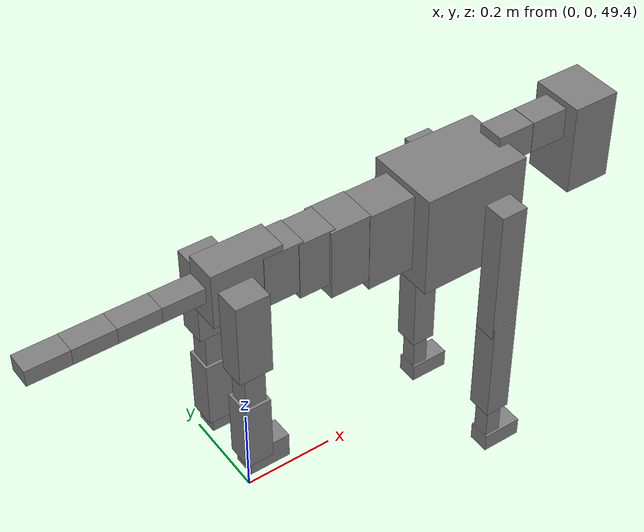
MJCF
<mujoco model="dog">

    <default>
        <joint armature="0.02" stiffness="1" damping="0.2" limited="true"/>
        <geom condim="3" friction="1 0.05 0.05" margin="0.01"/>
        <motor ctrllimited="true" ctrlrange="-1.0 1.0" forcelimited="true" gear="50"/>
    </default>

    <compiler inertiafromgeom="true" angle="radian"/>

    <option timestep="0.016" iterations="50" tolerance="1e-10" solver="Newton" jacobian="dense" cone="pyramidal"/>

    <size nconmax="20000" njmax="60000" nstack="5000000"/>
    <visual>
        <map force="0.1" zfar="30"/>
        <rgba haze="0.15 0.25 0.35 1"/>
        <quality shadowsize="2048"/>
        <global offwidth="800" offheight="800"/>
    </visual>

    <asset>
        <texture type="skybox" builtin="gradient" rgb1="0.3 0.5 0.7" rgb2="0 0 0" width="512" height="512"/>
        <texture name="texplane" type="2d" builtin="checker" rgb1=".2 .3 .4" rgb2=".1 0.15 0.2" width="512" height="512"
                 mark="cross" markrgb=".8 .8 .8"/>
        <texture name="texgeom" type="cube" builtin="flat" mark="cross" width="127" height="1278" rgb1="0.8 0.6 0.4"
                 rgb2="0.8 0.6 0.4" markrgb="1 1 1" random="0.01"/>

        <material name="matplane" reflectance="0.3" texture="texplane" texrepeat="1 1" texuniform="true"/>
        <material name="matgeom" texture="texgeom" texuniform="true" rgba="0.8 0.6 .4 1"/>
    </asset>

    <worldbody>
        <geom name="floor" pos="0 0 0" size="0 0 .25" type="plane" material="matplane" condim="3"/>

        <light directional="false" diffuse=".2 .2 .2" specular="0 0 0" pos="0 0 5" dir="0 0 -1" castshadow="false"/>
        <light mode="targetbodycom" target="torso" directional="false" diffuse=".8 .8 .8" specular="0.3 0.3 0.3"
               pos="0 0 4.0" dir="0 0 -1"/>

        <body name="root" pos="0 0 50">
            <freejoint name="root_1"/>
            <geom type="box" pos="0 0 -0.02" size="0.0774  0.0358  0.063" density="2030"/>

            <body name="spine1" pos="0.054 0 0">
                <joint name="spine1_y" axis="0 1 0" range="0 0.7" limited="true"/>
                <geom type="box" pos="0.02375 0 -0.03" size="0.04375  0.0375  0.05985" density="2030"/>

                <body name="spine2" pos="0.0612 0 0">
                    <joint name="spine2_y" axis="0 1 0" range="-0.15 0.15" limited="true"/>
                    <geom type="box" pos="0.03555  0  -0.04" size="0.04055  0.039  0.06615" density="2030"/>

                    <body name="spine3" pos="0.0730 0 0">
                        <joint name="spine3_y" axis="0 1 0" range="-0.15 0.15" limited="true"/>
                        <geom type="box" pos="0.03555  0  -0.057" size="0.04555  0.0445  0.081" density="2030"/>

                        <body name="spine4" pos="0.0780 0 0">
                            <joint name="spine4_y" axis="0 1 0" range="-0.15 0.15" limited="true"/>
                            <geom type="box" pos="0.05265  0  -0.07" size="0.05265  0.045  0.09135" density="2030"/>

                            <body name="torso" pos="0.1082 0 0">
                                <joint name="torso_y" axis="0 1 0" range="-0.15 0.15" limited="true"/>
                                <geom type="box" pos="0.11925  0  -0.085" size="0.11925  0.085  0.11745"
                                      density="2030"/>

                                <body name="neck1" pos="0.2160  0   0.0180">
                                    <joint name="neck1_y" axis="0 1 0" range="-1.2  -1" limited="true"/>
                                    <geom type="box" pos="0.0423  0  0" size="0.0423  0.03  0.036" density="2325"/>

                                    <body name="neck2" pos="0.0853  0  0">
                                        <joint name="neck2_y" axis="0 1 0" range="0.1  0" limited="true"/>
                                        <geom type="box" pos="0.0423  0  0" size="0.0423  0.03  0.036" density="2325"/>

                                        <body name="head" pos="0.0853  0  0">
                                            <joint name="head_y" axis="0 1 0" range="-0.3  -0.2" limited="true"/>
                                            <geom type="box" pos="0.0531  0  -0.055" size="0.0531  0.06  0.1044"
                                                  density="4030"/>

                                        </body>
                                    </body>
                                </body>

                                <body name="front_shoulder" pos="0.156  0   -0.0480">
                                    <joint name="front_shoulder_y" axis="0 1 0" range="-1 1.5" limited="true"/>
                                    <geom type="box" pos="0 0.13 -0.1342" size="0.0302  0.0258  0.1609" density="1158"/>
                                    <geom type="box" pos="0 -0.13 -0.1342" size="0.0302  0.0258  0.1609"
                                          density="1158"/>

                                    <body name="front_elbow" pos="0  0  -0.2684">
                                        <joint name="front_elbow_y" axis="0 1 0" range="-2 0" limited="true"/>
                                        <geom type="box" pos="0 0.13 -0.1262" size="0.0279  0.0286  0.1262"
                                              density="1081"/>
                                        <geom type="box" pos="0 -0.13 -0.1262" size="0.0279  0.0286  0.1262"
                                              density="1081"/>

                                        <body name="front_wrist" pos="0  0  -0.2525">
                                            <joint name="front_wrist_y" axis="0 1 0" range="-0.2 0" limited="true"/>
                                            <geom type="box" pos="0 0.13 -0.0460" size="0.0178  0.0197  0.0591"
                                                  density="1664"/>
                                            <geom type="box" pos="0 -0.13 -0.0460" size="0.0178  0.0197  0.0591"
                                                  density="1664"/>

                                            <body name="front_finger_end" pos="0  0  -0.0919">
                                                <joint name="front_finger_y" axis="0 1 0" range="-0.4 1"
                                                       limited="true"/>
                                                <geom type="box" pos="0.0246  0.13  -0.0064"
                                                      size="0.0451  0.0246  0.0214" density="1515"/>
                                                <geom type="box" pos="0.0246  -0.13  -0.0064"
                                                      size="0.0451  0.0246  0.0214" density="1515"/>

                                            </body>

                                        </body>
                                    </body>
                                </body>

                            </body>
                        </body>
                    </body>
                </body>
            </body>

            <body name="back_hip" pos="-0.03 0 -0.018">
                <joint name="back_hip_y" axis="0 1 0" range="-1.5 0.3" limited="true"/>
                <geom type="box" pos="0 0.07 -0.0721" size="0.0368  0.0289  0.0949" density="1154"/>
                <geom type="box" pos="0 -0.07 -0.0721" size="0.0368  0.0289  0.0949" density="1154"/>

                <body name="back_knee" pos="0  0  -0.1442">
                    <joint name="back_knee_y" axis="0 1 0" range="0 2.8" limited="true"/>
                    <geom type="box" pos="0 0.07 -0.0558" size="0.0230  0.0227  0.0714" density="1227"/>
                    <geom type="box" pos="0 -0.07 -0.0558" size="0.0230  0.0227  0.0714" density="1227"/>

                    <body name="back_ankle" pos="0  0  -0.1116">
                        <joint name="back_ankle_y" axis="0 1 0" range="-2.2 0" limited="true"/>
                        <geom type="box" pos="0 0.07 -0.0662" size="0.0293  0.0293  0.0775" density="1284"/>
                        <geom type="box" pos="0 -0.07 -0.0662" size="0.0293  0.0293  0.0775" density="1284"/>

                        <body name="back_toe_end" pos="0  0  -0.1324">
                            <joint name="back_toe_y" axis="0 1 0" range="-0.4 1" limited="true"/>
                            <geom type="box" pos="0.0247  0.07  -0.0139" size="0.0453  0.0247  0.0289" density="1515"/>
                            <geom type="box" pos="0.0247  -0.07  -0.0139" size="0.0453  0.0247  0.0289" density="1515"/>

                        </body>
                    </body>
                </body>
            </body>

            <body name="tail1" pos="-0.074 0 -0.006">
                <joint name="tail1_y" axis="0 1 0" range="-0.2 0.2" limited="true"/>
                <geom type="box" pos="-0.0536  0  0" size="0.045  0.025  0.0175" density="1587"/>

                <body name="tail2" pos="-0.09 0 0">
                    <joint name="tail2_y" axis="0 1 0" range="-0.2 0.2" limited="true"/>
                    <geom type="box" pos="-0.0536  0  0" size="0.045  0.025  0.0175" density="1587"/>

                    <body name="tail3" pos="-0.09 0 0">
                        <joint name="tail3_y" axis="0 1 0" range="-0.2 0.2" limited="true"/>
                        <geom type="box" pos="-0.0536  0  0" size="0.045  0.025  0.0175" density="1587"/>

                        <body name="tail4" pos="-0.09 0 0">
                            <joint name="tail4_y" axis="0 1 0" range="-0.2 0.2" limited="true"/>
                            <geom type="box" pos="-0.0536  0  0" size="0.045  0.025  0.0175" density="1587"/>

                        </body>
                    </body>
                </body>
            </body>
        </body>
    </worldbody>

    <actuator>
        <motor joint="spine1_y" forcerange="-150 150     "/>
        <motor joint="spine2_y" forcerange="-150 150     "/>
        <motor joint="spine3_y" forcerange="-150 150     "/>
        <motor joint="spine4_y" forcerange="-150 150     "/>
        <motor joint="torso_y" forcerange="-150 150     "/>
        <motor joint="neck1_y" forcerange="-100 100       "/>
        <motor joint="neck2_y" forcerange="-100 100       "/>
        <motor joint="head_y" forcerange="-150 150       "/>
        <motor joint="front_shoulder_y" forcerange="-159.00 112.81"/>
        <motor joint="front_elbow_y" forcerange="-198.28 109.51"/>
        <motor joint="front_wrist_y" forcerange="-100.93 56.87"/>
        <motor joint="front_finger_y" forcerange="-27.94 63.22"/>
        <motor joint="back_hip_y" forcerange="-229.89 355.12"/>
        <motor joint="back_knee_y" forcerange="-316.85 213.57"/>
        <motor joint="back_angle_y" forcerange="-235.09 134.49"/>
        <motor joint="back_toe_y" forcerange="-22.33 95.24"/>
        <motor joint="tail1_y" forcerange="-50 50     "/>
        <motor joint="tail2_y" forcerange="-50 50     "/>
        <motor joint="tail3_y" forcerange="-50 50     "/>
        <motor joint="tail4_y" forcerange="-50 50     "/>
    </actuator>
</mujoco>
